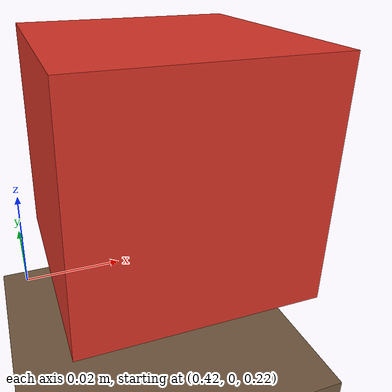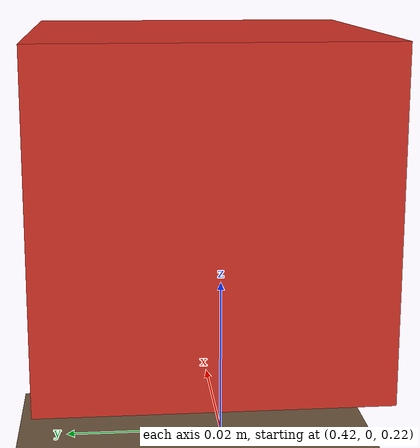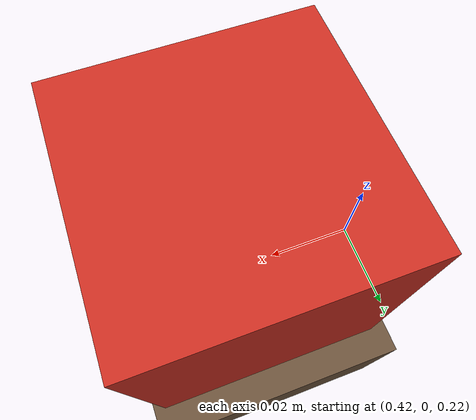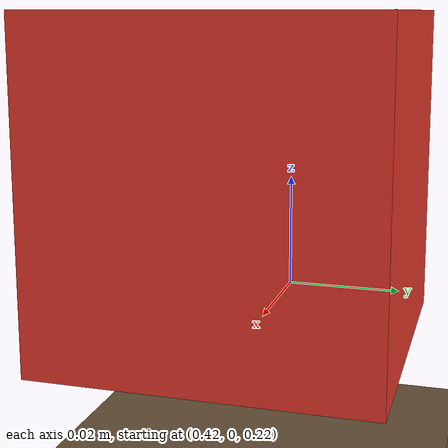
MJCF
<mujoco model="rebotarm_workcell">
  <statistic center="0.25 0 0.35" extent="1.0"/>
  <visual>
    <headlight diffuse="0.7 0.7 0.7" ambient="0.25 0.25 0.25" specular="0.1 0.1 0.1"/>
    <global azimuth="135" elevation="-25"/>
  </visual>
  <asset>
    <texture type="skybox" builtin="gradient" rgb1="0.35 0.45 0.6" rgb2="0.05 0.05 0.08" width="512" height="3072"/>
    <material name="floor" rgba="0.2 0.2 0.22 1"/>
    <material name="table" rgba="0.45 0.35 0.25 1"/>
  </asset>
  <worldbody>
    <light pos="0 -1 2" dir="0 0 -1" directional="true"/>
    <geom name="floor" type="plane" size="2 2 0.02" material="floor" friction="0.9 0.02 0.001"/>
    <geom name="worktable" type="box" pos="0.45 0 0.18" size="0.35 0.45 0.02" material="table" friction="0.9 0.02 0.001"/>
    <body name="grasp_cube" pos="0.45 0 0.245">
      <freejoint name="grasp_cube_freejoint"/>
      <inertial pos="0 0 0" mass="0.10" diaginertia="0.0000104 0.0000104 0.0000104"/>
      <geom name="grasp_cube_geom" type="box" size="0.025 0.025 0.025" rgba="0.85 0.2 0.15 1"
            friction="1.1 0.03 0.002" solref="0.008 1" solimp="0.95 0.99 0.001"/>
    </body>
  </worldbody>
</mujoco>
